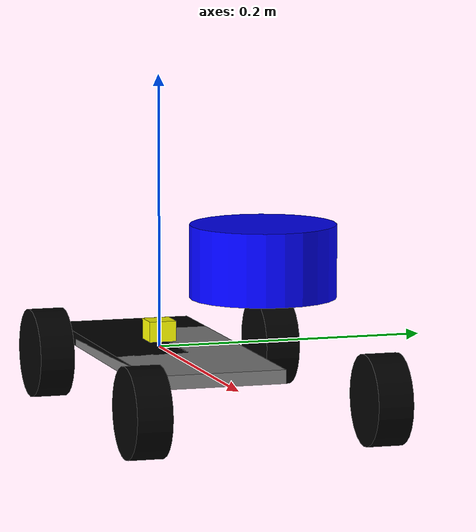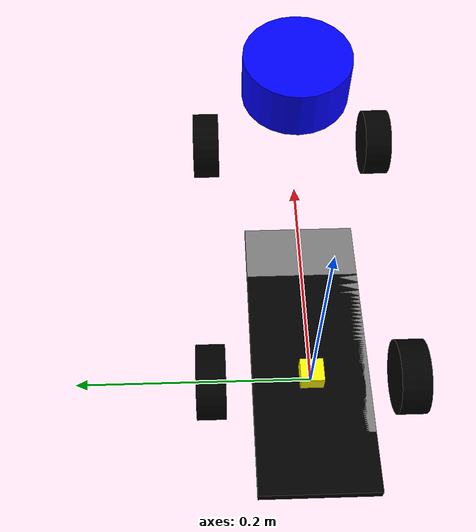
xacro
<?xml version="1.0"?>
<robot xmlns:xacro="http://www.ros.org/wiki/xacro" name="smart_car">
  <!-- Define properties -->
  <xacro:property name="wheel_diameter" value="0.064"/>
  <xacro:property name="wheel_width" value="0.025"/>
  <xacro:property name="wheelbase_length" value="0.257"/>
  <xacro:property name="wheelbase_width" value="0.17"/>
  <xacro:property name="base_length" value="0.2"/>
  <xacro:property name="base_width" value="0.1"/>

  <!-- Base link -->
  <link name="base_link">

  </link>

  <!-- Chassis link -->
  <link name="chassis_link">
    <visual>
      <geometry>
        <box size="${base_length} ${base_width} 0.01"/>
      </geometry>
      <material name="grey">
        <color rgba="0.5 0.5 0.5 1"/>
      </material>
    </visual>
    <collision>
      <geometry>
        <box size="${base_length} ${base_width} 0.01"/>
      </geometry>
    </collision>
    <inertial>
      <mass value="1"/>
      <origin xyz="0 0 0"/>
      <inertia ixx="1e-3" ixy="0.0" ixz="0.0" iyy="1e-3" iyz="0.0" izz="1e-3"/>
    </inertial>
  </link>

  <!-- Base footprint -->
  <link name="base_footprint">
    <visual>
      <geometry>
        <box size="${base_length} ${base_width} 0.01"/>
      </geometry>
      <material name="transparent">
        <color rgba="0 0 0 0"/>
      </material>
    </visual>
    <collision>
      <geometry>
        <box size="${base_length} ${base_width} 0.01"/>
      </geometry>
    </collision>
    <inertial>
      <mass value="0.1"/>
      <origin xyz="0 0 0"/>
      <inertia ixx="1e-4" ixy="0.0" ixz="0.0" iyy="1e-4" iyz="0.0" izz="1e-4"/>
    </inertial>
  </link>

  <!-- Joint to connect base_footprint to base_link -->
  <joint name="base_footprint_joint" type="fixed">
    <parent link="base_link"/>
    <child link="base_footprint"/>
    <origin xyz="0 0 0"/>
    <axis xyz="0 0 1"/>
  </joint>

  <joint name="chassis_joint" type="fixed">
    <parent link="base_link"/>
    <child link="chassis_link"/>
    <origin xyz="0.05 0 0"/>
    <axis xyz="0 0 1"/>
  </joint>

 <!-- Wheels -->
<link name="back_left_wheel">
  <visual>
    <origin rpy="0 1.57075 1.57075" xyz="0 0 0"/>
    <geometry>
      <cylinder radius="${wheel_diameter / 2}" length="${wheel_width}"/>
    </geometry>
    <material name="black">
      <color rgba="0 0 0 1"/>
    </material>
  </visual>
  <collision>
    <origin rpy="0 1.57075 1.57075" xyz="0 0 0"/>
    <geometry>
      <cylinder radius="${wheel_diameter / 2}" length="${wheel_width}"/>
    </geometry>
  </collision>
  <inertial>
    <mass value="0.5"/>
    <origin xyz="0 0 0"/>
    <inertia ixx="1e-4" ixy="0.0" ixz="0.0" iyy="1e-4" iyz="0.0" izz="1e-4"/>
  </inertial>
</link>

<link name="back_right_wheel">
  <visual>
    <origin rpy="0 1.57075 1.57075" xyz="0 0 0"/>
    <geometry>
      <cylinder radius="${wheel_diameter / 2}" length="${wheel_width}"/>
    </geometry>
    <material name="black">
      <color rgba="0 0 0 1"/>
    </material>
  </visual>
  <collision>
    <origin rpy="0 1.57075 1.57075" xyz="0 0 0"/>
    <geometry>
      <cylinder radius="${wheel_diameter / 2}" length="${wheel_width}"/>
    </geometry>
  </collision>
  <inertial>
    <mass value="0.5"/>
    <origin xyz="0 0 0"/>
    <inertia ixx="1e-4" ixy="0.0" ixz="0.0" iyy="1e-4" iyz="0.0" izz="1e-4"/>
  </inertial>
</link>

<link name="front_left_wheel">
  <visual>
    <origin rpy="0 1.57075 1.57075" xyz="0 0 0"/>
    <geometry>
      <cylinder radius="${wheel_diameter / 2}" length="${wheel_width}"/>
    </geometry>
    <material name="black">
      <color rgba="0 0 0 1"/>
    </material>
  </visual>
  <collision>
    <origin rpy="0 1.57075 1.57075" xyz="0 0 0"/>
    <geometry>
      <cylinder radius="${wheel_diameter / 2}" length="${wheel_width}"/>
    </geometry>
  </collision>
  <inertial>
    <mass value="0.5"/>
    <origin xyz="0 0 0"/>
    <inertia ixx="1e-4" ixy="0.0" ixz="0.0" iyy="1e-4" iyz="0.0" izz="1e-4"/>
  </inertial>
</link>

<link name="front_right_wheel">
  <visual>
    <origin rpy="0 1.57075 1.57075" xyz="0 0 0"/>
    <geometry>
      <cylinder radius="${wheel_diameter / 2}" length="${wheel_width}"/>
    </geometry>
    <material name="black">
      <color rgba="0 0 0 1"/>
    </material>
  </visual>
  <collision>
    <origin rpy="0 1.57075 1.57075" xyz="0 0 0"/>
    <geometry>
      <cylinder radius="${wheel_diameter / 2}" length="${wheel_width}"/>
    </geometry>
  </collision>
  <inertial>
    <mass value="0.5"/>
    <origin xyz="0 0 0"/>
    <inertia ixx="1e-4" ixy="0.0" ixz="0.0" iyy="1e-4" iyz="0.0" izz="1e-4"/>
  </inertial>
</link>

<!-- Steering Links -->
<link name="front_left_wheel_steer">
  <inertial>
    <mass value="0.01"/>
    <origin xyz="0 0 0"/>
    <inertia ixx="0.001" ixy="0.0" ixz="0.0" iyy="0.001" iyz="0.0" izz="0.001"/>
  </inertial>
</link>

<link name="front_right_wheel_steer">
  <inertial>
    <mass value="0.01"/>
    <origin xyz="0 0 0"/>
    <inertia ixx="0.001" ixy="0.0" ixz="0.0" iyy="0.001" iyz="0.0" izz="0.001"/>
  </inertial>
</link>

<!-- Joints -->
<joint name="back_left_wheel_joint" type="continuous">
  <parent link="base_link"/>
  <child link="back_left_wheel"/>
  <origin xyz="0 ${-wheelbase_width / 2} 0"/>
  <axis xyz="0 1 0"/>
</joint>

<joint name="back_right_wheel_joint" type="continuous">
  <parent link="base_link"/>
  <child link="back_right_wheel"/>
  <origin xyz="0 ${wheelbase_width / 2} 0"/>
  <axis xyz="0 1 0"/>
</joint>

<joint name="front_left_wheel_steer_joint" type="revolute">
  <parent link="base_link"/>
  <child link="front_left_wheel_steer"/>
  <origin xyz="${wheelbase_length } ${-wheelbase_width / 2} 0" rpy="0 0 0"/>
  <axis xyz="0 0 1"/>
  <limit lower="-0.5" upper="0.5" effort="10" velocity="1.0"/>
</joint>

<joint name="front_left_wheel_joint" type="continuous">
  <parent link="front_left_wheel_steer"/>
  <child link="front_left_wheel"/>
  <origin xyz="0 0 0"/>
  <axis xyz="0 1 0"/>
</joint>

<joint name="front_right_wheel_steer_joint" type="revolute">
  <parent link="base_link"/>
  <child link="front_right_wheel_steer"/>
  <origin xyz="${wheelbase_length } ${wheelbase_width / 2} 0" rpy="0 0 0"/>
  <axis xyz="0 0 1"/>
  <limit lower="-0.5" upper="0.5" effort="10" velocity="1.0"/>
</joint>

<joint name="front_right_wheel_joint" type="continuous">
  <parent link="front_right_wheel_steer"/>
  <child link="front_right_wheel"/>
  <origin xyz="0 0 0"/>
  <axis xyz="0 1 0"/>
</joint>

  <!-- IMU Sensor -->
  <link name="imu_link">
    <inertial>
      <mass value="0.01"/>
      <origin xyz="0 0 0"/>
      <inertia ixx="0.0001" ixy="3.0" ixz="0.0" iyy="0.0001" iyz="0.0" izz="0.0001"/>
    </inertial>
    <visual>
      <geometry>
        <box size="0.02 0.02 0.02"/>
      </geometry>
      <material name="yellow">
        <color rgba="1 1 0 1"/>
      </material>
    </visual>
  </link>

  <joint name="imu_joint" type="fixed">
    <parent link="base_link"/>
    <child link="imu_link"/>
    <origin xyz="0 0 0.01"/>

  </joint>

  <gazebo reference="imu_link">
    <sensor name="br_imu" type="imu">
        <always_on>true</always_on>
        <update_rate>100</update_rate>
        <imu>
          <angular_velocity>
            <x>
              <noise type="gaussian">
                <mean>0.0</mean>
                <stddev>2e-4</stddev>
              </noise>
            </x>
            <y>
              <noise type="gaussian">
                <mean>0.0</mean>
                <stddev>2e-4</stddev>
              </noise>
            </y>
            <z>
              <noise type="gaussian">
                <mean>0.0</mean>
                <stddev>2e-4</stddev>
              </noise>
            </z>
          </angular_velocity>
          <linear_acceleration>
            <x>
              <noise type="gaussian">
                <mean>0.0</mean>
                <stddev>1.7e-2</stddev>
              </noise>
            </x>
            <y>
              <noise type="gaussian">
                <mean>0.0</mean>
                <stddev>1.7e-2</stddev>
              </noise>
            </y>
            <z>
              <noise type="gaussian">
                <mean>0.0</mean>
                <stddev>1.7e-2</stddev>
              </noise>
            </z>
          </linear_acceleration>
        </imu>
        <plugin name="bytes_imu" filename="libgazebo_ros_imu_sensor.so">
            <ros>
                <remapping>~/out:=imu_data</remapping>
            </ros>
            <initial_orientation_as_reference>false</initial_orientation_as_reference>
        </plugin>
    </sensor>
  </gazebo>

  <!-- LIDAR Sensor -->
  <link name="sllidar_base_link">
    <inertial>
      <mass value="0.01"/>
      <origin xyz="0 0 0"/>
      <inertia ixx="0.0001" ixy="0.0" ixz="0.0" iyy="0.0001" iyz="0.0" izz="0.0001"/>
    </inertial>
    <visual>
      <geometry>
        <cylinder radius="0.05" length="0.05"/>
      </geometry>
      <material name="blue">
        <color rgba="0 0 1 1"/>
      </material>
    </visual>
  </link>

  <joint name="lidar_joint" type="fixed">
    <parent link="base_link"/>
    <child link="sllidar_base_link"/>
    <origin xyz="${wheelbase_length} 0 0.1"/>
    <axis xyz="0 0 1"/>
  </joint>

  <gazebo reference="sllidar_base_link">
    <sensor name="rplidar_a3" type="ray">
        <always_on>true</always_on>
        <visualize>false</visualize>
        <pose>0.0 0 0.0 0 0 0</pose>
        <update_rate>15</update_rate>
        <ray>
          <scan>
            <horizontal>
              <samples>667</samples>
              <resolution>0.54</resolution>
              <min_angle>0.000000</min_angle>
              <max_angle>6.280000</max_angle>
            </horizontal>
          </scan>
          <range>
            <min>0.120000</min>
            <max>20</max>
            <resolution>0.54</resolution>
          </range>
          <noise>
            <type>gaussian</type>
            <mean>0.0</mean>
            <stddev>0.01</stddev>
          </noise>
        </ray>
        <plugin name="bytes_laserscan" filename="libgazebo_ros_ray_sensor.so">
          <ros>
              <remapping>~/out:=scan</remapping>
          </ros>
          <output_type>sensor_msgs/LaserScan</output_type>
          <frame_name>sllidar_base_link</frame_name>
        </plugin>
    </sensor>
    <material>Gazebo/Purple</material>
  </gazebo>

  <gazebo>
  <plugin name="car_control_plugin" filename="libcar_gazebo_plugin.so">
  </plugin>
</gazebo>

</robot>
